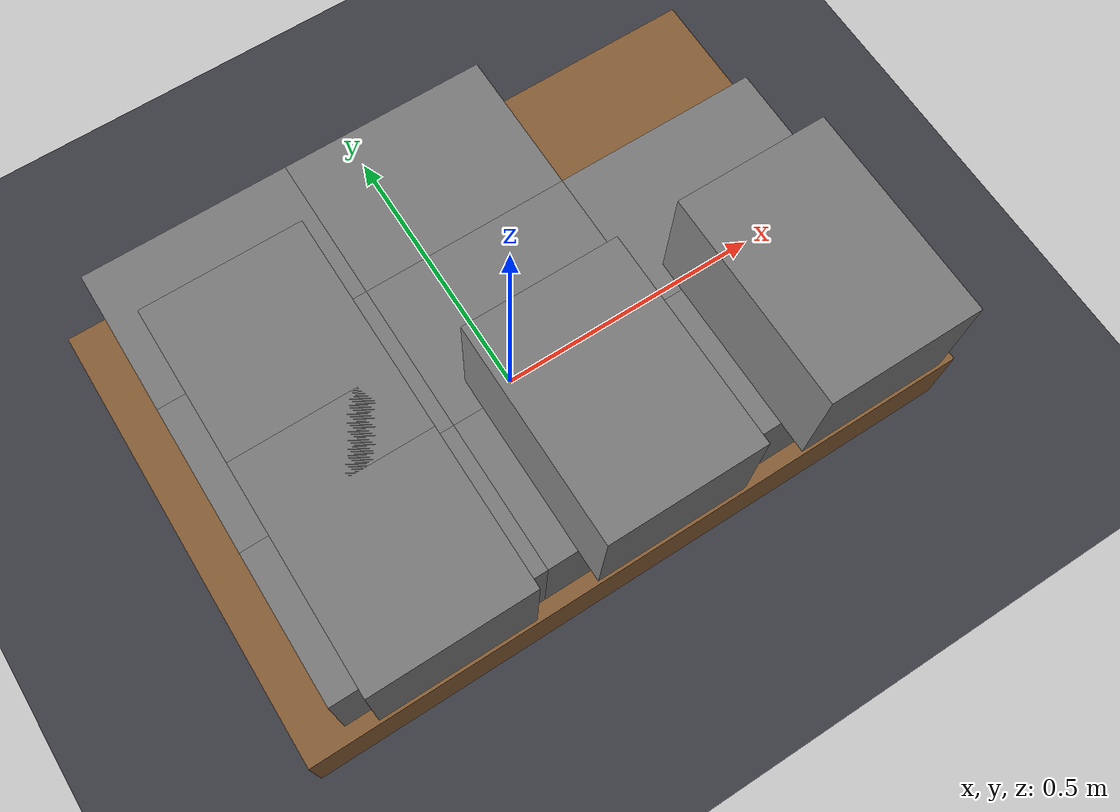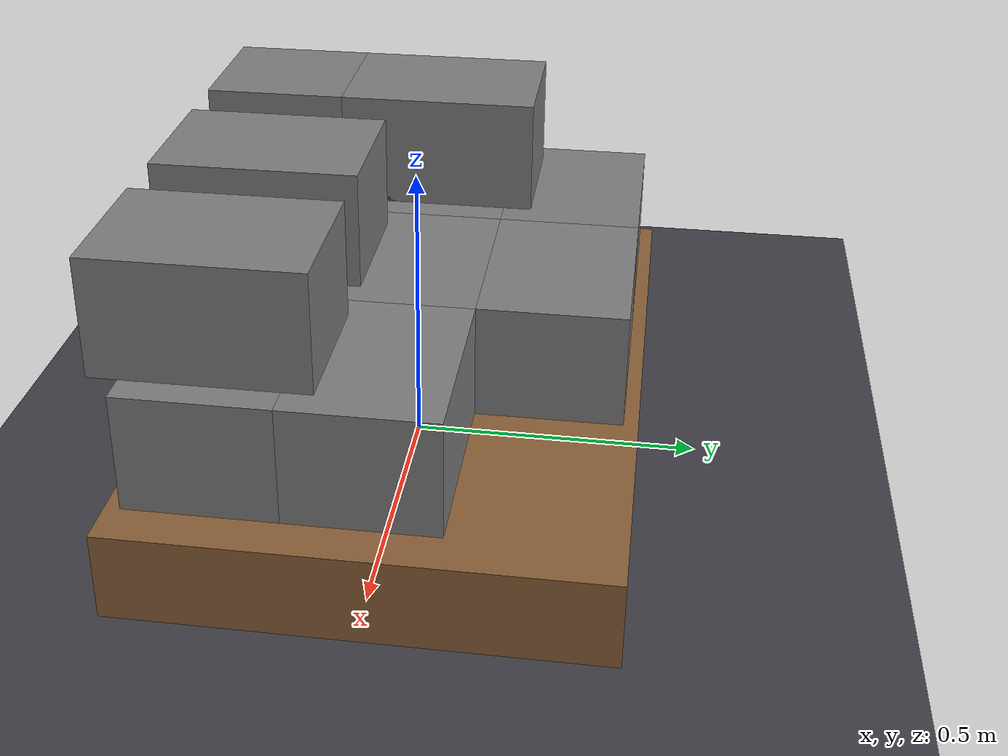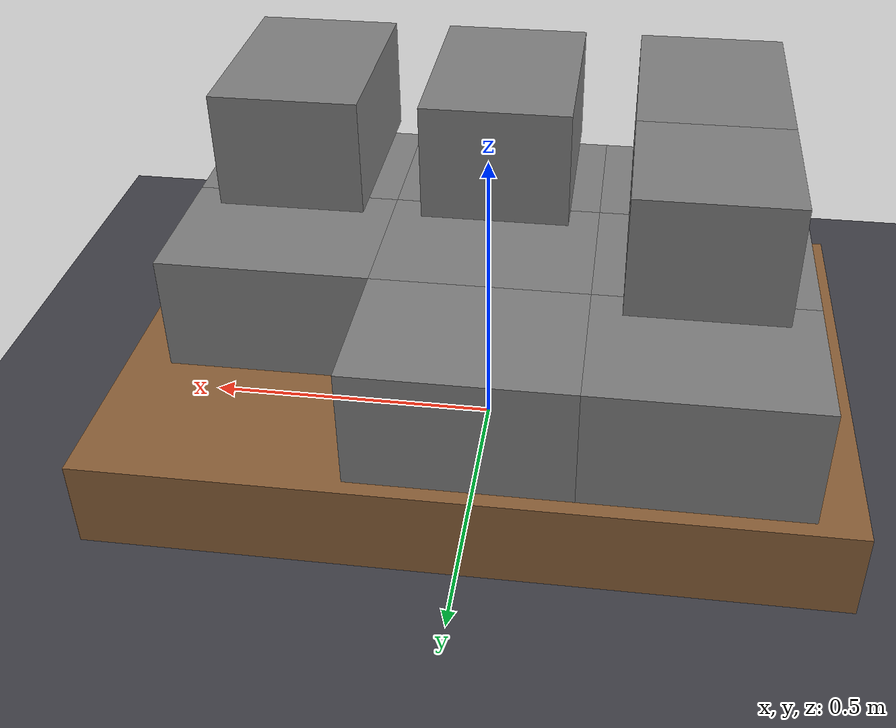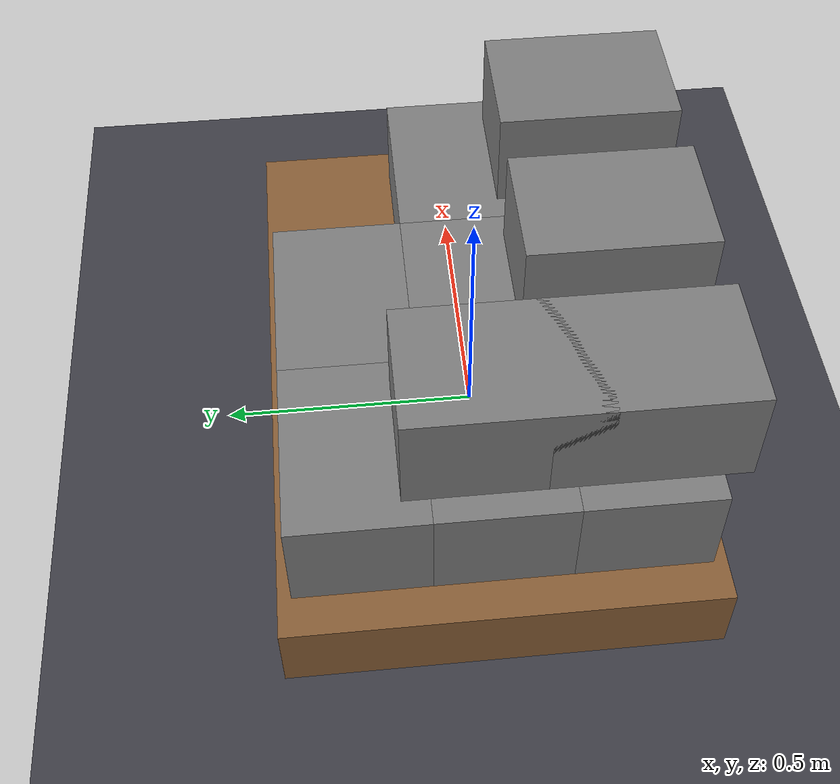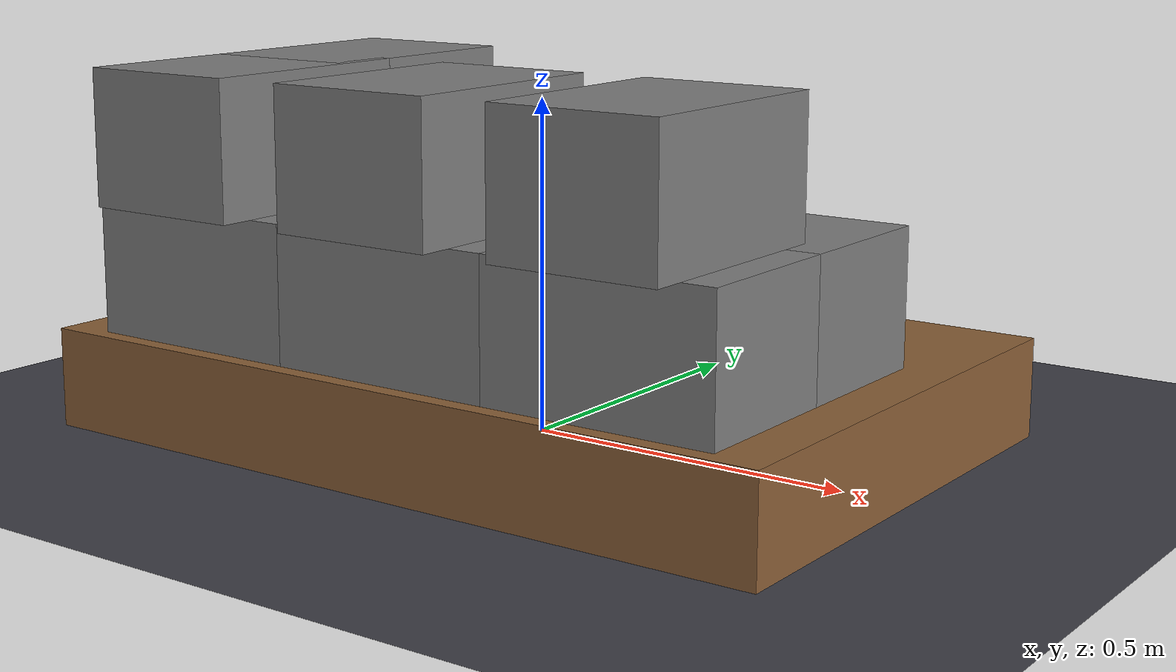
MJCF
<?xml version="1.0" encoding="UTF-8"?>
<mujoco model="P-e87a1613">
  <compiler angle="degree" coordinate="local"/>
  <option timestep="0.002" gravity="0 0 -9.81" integrator="implicitfast"/>
  <asset>
    <material name="palletmat" rgba="0.55 0.38 0.22 1"/>
    <material name="itemmat" rgba="0.78 0.65 0.45 1"/>
    <material name="beltmat" rgba="0.25 0.25 0.28 1"/>
  </asset>
  <worldbody>
    <light pos="0 0 4" dir="0 0 -1" diffuse="0.8 0.8 0.8"/>
    <geom name="conveyor" type="plane" size="10.0 2.0 0.1" pos="0 0 0" friction="0.4949 0.005 0.0001" material="beltmat"/>
    <body name="pallet_base" pos="0 0 0.07500">
      <freejoint name="pallet_joint"/>
      <geom name="pallet_geom" type="box" size="0.60000 0.40000 0.07500" mass="25.0" friction="0.4949 0.005 0.0001" material="palletmat"/>
    </body>
    <body name="item_0" pos="-0.35000 -0.25000 0.25000" euler="0 0 0.0">
      <freejoint name="item_0_joint"/>
      <geom name="item_0_geom" type="box" size="0.17500 0.12500 0.10000" mass="9.0" friction="0.4949 0.005 0.0001"/>
    </body>
    <body name="item_1" pos="0.00000 -0.25000 0.25000" euler="0 0 0.0">
      <freejoint name="item_1_joint"/>
      <geom name="item_1_geom" type="box" size="0.17500 0.12500 0.10000" mass="9.0" friction="0.4949 0.005 0.0001"/>
    </body>
    <body name="item_2" pos="0.35000 -0.25000 0.25000" euler="0 0 0.0">
      <freejoint name="item_2_joint"/>
      <geom name="item_2_geom" type="box" size="0.17500 0.12500 0.10000" mass="9.0" friction="0.4949 0.005 0.0001"/>
    </body>
    <body name="item_3" pos="-0.35000 0.00000 0.25000" euler="0 0 0.0">
      <freejoint name="item_3_joint"/>
      <geom name="item_3_geom" type="box" size="0.17500 0.12500 0.10000" mass="9.0" friction="0.4949 0.005 0.0001"/>
    </body>
    <body name="item_4" pos="0.00000 0.00000 0.25000" euler="0 0 0.0">
      <freejoint name="item_4_joint"/>
      <geom name="item_4_geom" type="box" size="0.17500 0.12500 0.10000" mass="9.0" friction="0.4949 0.005 0.0001"/>
    </body>
    <body name="item_5" pos="0.35000 0.00000 0.25000" euler="0 0 0.0">
      <freejoint name="item_5_joint"/>
      <geom name="item_5_geom" type="box" size="0.17500 0.12500 0.10000" mass="9.0" friction="0.4949 0.005 0.0001"/>
    </body>
    <body name="item_6" pos="-0.35000 0.25000 0.25000" euler="0 0 0.0">
      <freejoint name="item_6_joint"/>
      <geom name="item_6_geom" type="box" size="0.17500 0.12500 0.10000" mass="9.0" friction="0.4949 0.005 0.0001"/>
    </body>
    <body name="item_7" pos="0.00000 0.25000 0.25000" euler="0 0 0.0">
      <freejoint name="item_7_joint"/>
      <geom name="item_7_geom" type="box" size="0.17500 0.12500 0.10000" mass="9.0" friction="0.4949 0.005 0.0001"/>
    </body>
    <body name="item_8" pos="-0.35000 -0.25000 0.45000" euler="0 0 90.0">
      <freejoint name="item_8_joint"/>
      <geom name="item_8_geom" type="box" size="0.17500 0.12500 0.10000" mass="9.0" friction="0.4949 0.005 0.0001"/>
    </body>
    <body name="item_9" pos="0.00000 -0.25000 0.45000" euler="0 0 90.0">
      <freejoint name="item_9_joint"/>
      <geom name="item_9_geom" type="box" size="0.17500 0.12500 0.10000" mass="9.0" friction="0.4949 0.005 0.0001"/>
    </body>
    <body name="item_10" pos="0.35000 -0.25000 0.45000" euler="0 0 90.0">
      <freejoint name="item_10_joint"/>
      <geom name="item_10_geom" type="box" size="0.17500 0.12500 0.10000" mass="9.0" friction="0.4949 0.005 0.0001"/>
    </body>
    <body name="item_11" pos="-0.35000 0.00000 0.45000" euler="0 0 90.0">
      <freejoint name="item_11_joint"/>
      <geom name="item_11_geom" type="box" size="0.17500 0.12500 0.10000" mass="9.0" friction="0.4949 0.005 0.0001"/>
    </body>
  </worldbody>
  <equality>
    <weld body1="pallet_base" body2="item_0" solref="0.02 1" solimp="0.95 0.99 0.001"/>
    <weld body1="pallet_base" body2="item_1" solref="0.02 1" solimp="0.95 0.99 0.001"/>
    <weld body1="pallet_base" body2="item_2" solref="0.02 1" solimp="0.95 0.99 0.001"/>
    <weld body1="pallet_base" body2="item_3" solref="0.02 1" solimp="0.95 0.99 0.001"/>
    <weld body1="pallet_base" body2="item_4" solref="0.02 1" solimp="0.95 0.99 0.001"/>
    <weld body1="pallet_base" body2="item_5" solref="0.02 1" solimp="0.95 0.99 0.001"/>
    <weld body1="pallet_base" body2="item_6" solref="0.02 1" solimp="0.95 0.99 0.001"/>
    <weld body1="pallet_base" body2="item_7" solref="0.02 1" solimp="0.95 0.99 0.001"/>
    <weld body1="pallet_base" body2="item_8" solref="0.02 1" solimp="0.95 0.99 0.001"/>
    <weld body1="pallet_base" body2="item_9" solref="0.02 1" solimp="0.95 0.99 0.001"/>
    <weld body1="pallet_base" body2="item_10" solref="0.02 1" solimp="0.95 0.99 0.001"/>
    <weld body1="pallet_base" body2="item_11" solref="0.02 1" solimp="0.95 0.99 0.001"/>
  </equality>
</mujoco>
